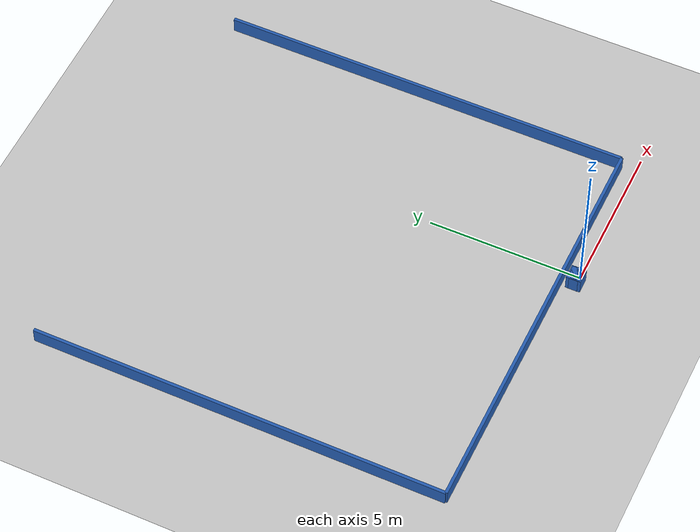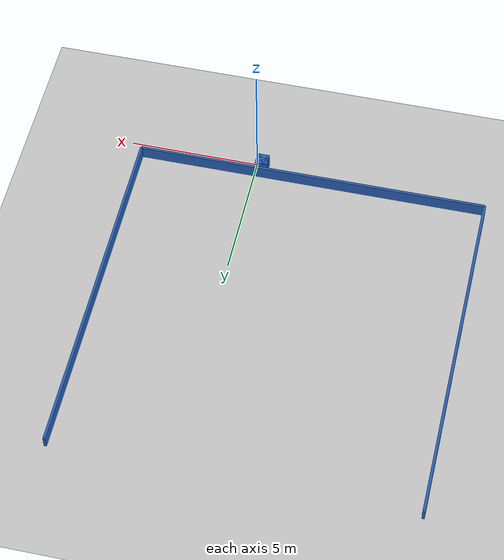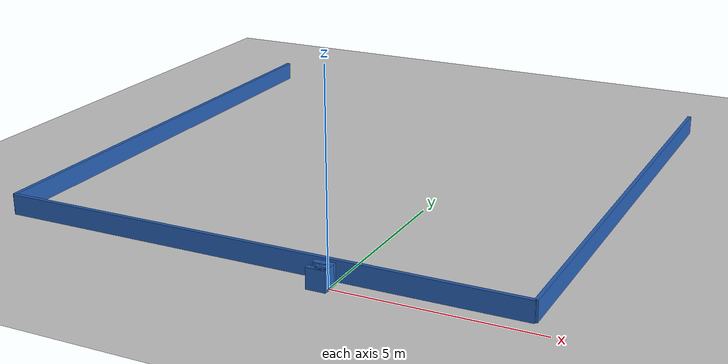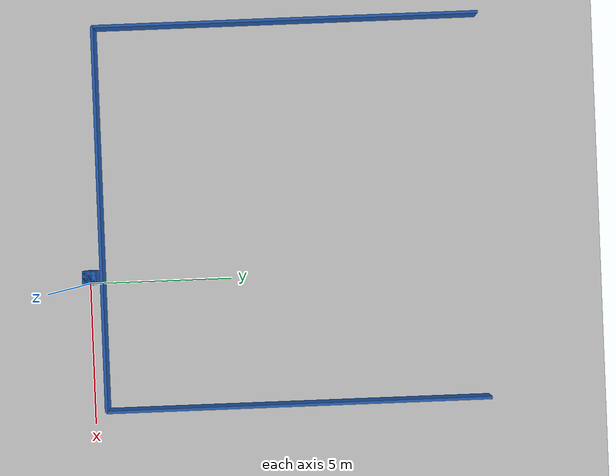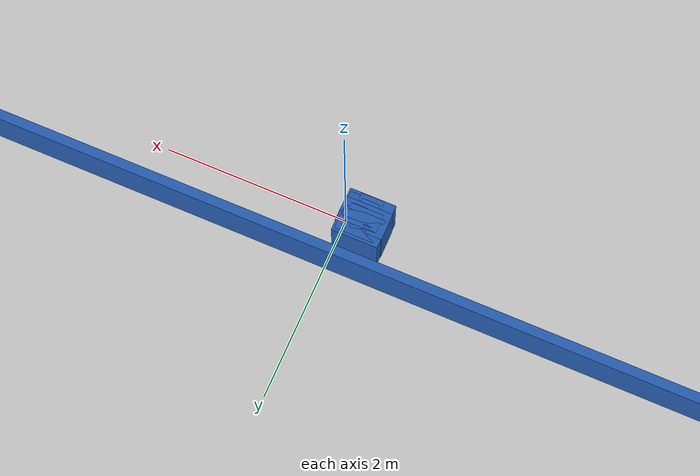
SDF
<?xml version="1.0" ?>
    <sdf version="1.5">
      <world name="default">
        <!-- A global light source -->
        <include>
          <uri>model://sun</uri>
        </include>
        <!-- A ground plane -->
        <include>
          <uri>model://ground_plane</uri>
        </include>

    <model name='libopen_space_final_T2B_121_6'>
      <static>1</static>
      <pose frame=''>-0.225000 0.075000 0.000000 0.000000 0.000000 0.000000</pose>
      <link name='link'>
        <inertial>
          <mass>1</mass>
          <inertia>
            <ixx>0.145833</ixx>
            <ixy>0</ixy>
            <ixz>0</ixz>
            <iyy>0.145833</iyy>
            <iyz>0</iyz>
            <izz>0.125</izz>
          </inertia>
        </inertial>
        <collision name='collision'>
          <geometry>
            <box>
              <size>0.49 0.48 1</size>
            </box>
          </geometry>
          <max_contacts>10</max_contacts>
          <surface>
            <contact>
              <ode/>
            </contact>
            <bounce/>
            <friction>
              <torsional>
                <ode/>
              </torsional>
              <ode/>
            </friction>
          </surface>
        </collision>
        <visual name='visual'>
          <geometry>
            <box>
              <size>0.49 0.48 1</size>
            </box>
          </geometry>
	    <material>
              <ambient>0.152000 0.379000 0.720000 1</ambient>
	      <diffuse>0.152000 0.379000 0.720000 1</diffuse>
          </material>
          <material>
            <script>
              <name>Gazebo/Grey</name>
              <uri>file://media/materials/scripts/gazebo.material</uri>
            </script>
          </material>
        </visual>
        <self_collide>0</self_collide>
        <kinematic>0</kinematic>
        <gravity>1</gravity>
      </link>
      <plugin name='libopen_space_final_T2B_121_6' filename='libopen_space_final_T2B_121_6.so'/>
    </model>

    <model name='libopen_space_final_T2B_84_5'>
      <static>1</static>
      <pose frame=''>-0.225000 0.075000 0.000000 0.000000 0.000000 0.000000</pose>
      <link name='link'>
        <inertial>
          <mass>1</mass>
          <inertia>
            <ixx>0.145833</ixx>
            <ixy>0</ixy>
            <ixz>0</ixz>
            <iyy>0.145833</iyy>
            <iyz>0</iyz>
            <izz>0.125</izz>
          </inertia>
        </inertial>
        <collision name='collision'>
          <geometry>
            <box>
              <size>0.31 0.14 1</size>
            </box>
          </geometry>
          <max_contacts>10</max_contacts>
          <surface>
            <contact>
              <ode/>
            </contact>
            <bounce/>
            <friction>
              <torsional>
                <ode/>
              </torsional>
              <ode/>
            </friction>
          </surface>
        </collision>
        <visual name='visual'>
          <geometry>
            <box>
              <size>0.31 0.14 1</size>
            </box>
          </geometry>
	    <material>
              <ambient>0.152000 0.379000 0.720000 1</ambient>
	      <diffuse>0.152000 0.379000 0.720000 1</diffuse>
          </material>
          <material>
            <script>
              <name>Gazebo/Grey</name>
              <uri>file://media/materials/scripts/gazebo.material</uri>
            </script>
          </material>
        </visual>
        <self_collide>0</self_collide>
        <kinematic>0</kinematic>
        <gravity>1</gravity>
      </link>
      <plugin name='libopen_space_final_T2B_84_5' filename='libopen_space_final_T2B_84_5.so'/>
    </model>

    <model name='libopen_space_final_T2B_134_32'>
      <static>1</static>
      <pose frame=''>-0.225000 0.075000 0.000000 0.000000 0.000000 0.000000</pose>
      <link name='link'>
        <inertial>
          <mass>1</mass>
          <inertia>
            <ixx>0.145833</ixx>
            <ixy>0</ixy>
            <ixz>0</ixz>
            <iyy>0.145833</iyy>
            <iyz>0</iyz>
            <izz>0.125</izz>
          </inertia>
        </inertial>
        <collision name='collision'>
          <geometry>
            <box>
              <size>0.32 0.21 1</size>
            </box>
          </geometry>
          <max_contacts>10</max_contacts>
          <surface>
            <contact>
              <ode/>
            </contact>
            <bounce/>
            <friction>
              <torsional>
                <ode/>
              </torsional>
              <ode/>
            </friction>
          </surface>
        </collision>
        <visual name='visual'>
          <geometry>
            <box>
              <size>0.32 0.21 1</size>
            </box>
          </geometry>
	    <material>
              <ambient>0.152000 0.379000 0.720000 1</ambient>
	      <diffuse>0.152000 0.379000 0.720000 1</diffuse>
          </material>
          <material>
            <script>
              <name>Gazebo/Grey</name>
              <uri>file://media/materials/scripts/gazebo.material</uri>
            </script>
          </material>
        </visual>
        <self_collide>0</self_collide>
        <kinematic>0</kinematic>
        <gravity>1</gravity>
      </link>
      <plugin name='libopen_space_final_T2B_134_32' filename='libopen_space_final_T2B_134_32.so'/>
    </model>

    <model name='libopen_space_final_T2B_77_65'>
      <static>1</static>
      <pose frame=''>-0.225000 0.075000 0.000000 0.000000 0.000000 0.000000</pose>
      <link name='link'>
        <inertial>
          <mass>1</mass>
          <inertia>
            <ixx>0.145833</ixx>
            <ixy>0</ixy>
            <ixz>0</ixz>
            <iyy>0.145833</iyy>
            <iyz>0</iyz>
            <izz>0.125</izz>
          </inertia>
        </inertial>
        <collision name='collision'>
          <geometry>
            <box>
              <size>0.50 0.29 1</size>
            </box>
          </geometry>
          <max_contacts>10</max_contacts>
          <surface>
            <contact>
              <ode/>
            </contact>
            <bounce/>
            <friction>
              <torsional>
                <ode/>
              </torsional>
              <ode/>
            </friction>
          </surface>
        </collision>
        <visual name='visual'>
          <geometry>
            <box>
              <size>0.50 0.29 1</size>
            </box>
          </geometry>
	    <material>
              <ambient>0.152000 0.379000 0.720000 1</ambient>
	      <diffuse>0.152000 0.379000 0.720000 1</diffuse>
          </material>
          <material>
            <script>
              <name>Gazebo/Grey</name>
              <uri>file://media/materials/scripts/gazebo.material</uri>
            </script>
          </material>
        </visual>
        <self_collide>0</self_collide>
        <kinematic>0</kinematic>
        <gravity>1</gravity>
      </link>
      <plugin name='libopen_space_final_T2B_77_65' filename='libopen_space_final_T2B_77_65.so'/>
    </model>

    <model name='libopen_space_final_T2B_145_37'>
      <static>1</static>
      <pose frame=''>-0.225000 0.075000 0.000000 0.000000 0.000000 0.000000</pose>
      <link name='link'>
        <inertial>
          <mass>1</mass>
          <inertia>
            <ixx>0.145833</ixx>
            <ixy>0</ixy>
            <ixz>0</ixz>
            <iyy>0.145833</iyy>
            <iyz>0</iyz>
            <izz>0.125</izz>
          </inertia>
        </inertial>
        <collision name='collision'>
          <geometry>
            <box>
              <size>0.20 0.23 1</size>
            </box>
          </geometry>
          <max_contacts>10</max_contacts>
          <surface>
            <contact>
              <ode/>
            </contact>
            <bounce/>
            <friction>
              <torsional>
                <ode/>
              </torsional>
              <ode/>
            </friction>
          </surface>
        </collision>
        <visual name='visual'>
          <geometry>
            <box>
              <size>0.20 0.23 1</size>
            </box>
          </geometry>
	    <material>
              <ambient>0.152000 0.379000 0.720000 1</ambient>
	      <diffuse>0.152000 0.379000 0.720000 1</diffuse>
          </material>
          <material>
            <script>
              <name>Gazebo/Grey</name>
              <uri>file://media/materials/scripts/gazebo.material</uri>
            </script>
          </material>
        </visual>
        <self_collide>0</self_collide>
        <kinematic>0</kinematic>
        <gravity>1</gravity>
      </link>
      <plugin name='libopen_space_final_T2B_145_37' filename='libopen_space_final_T2B_145_37.so'/>
    </model>

    <model name='libopen_space_final_T2B_87_56'>
      <static>1</static>
      <pose frame=''>-0.225000 0.075000 0.000000 0.000000 0.000000 0.000000</pose>
      <link name='link'>
        <inertial>
          <mass>1</mass>
          <inertia>
            <ixx>0.145833</ixx>
            <ixy>0</ixy>
            <ixz>0</ixz>
            <iyy>0.145833</iyy>
            <iyz>0</iyz>
            <izz>0.125</izz>
          </inertia>
        </inertial>
        <collision name='collision'>
          <geometry>
            <box>
              <size>0.19 0.37 1</size>
            </box>
          </geometry>
          <max_contacts>10</max_contacts>
          <surface>
            <contact>
              <ode/>
            </contact>
            <bounce/>
            <friction>
              <torsional>
                <ode/>
              </torsional>
              <ode/>
            </friction>
          </surface>
        </collision>
        <visual name='visual'>
          <geometry>
            <box>
              <size>0.19 0.37 1</size>
            </box>
          </geometry>
	    <material>
              <ambient>0.152000 0.379000 0.720000 1</ambient>
	      <diffuse>0.152000 0.379000 0.720000 1</diffuse>
          </material>
          <material>
            <script>
              <name>Gazebo/Grey</name>
              <uri>file://media/materials/scripts/gazebo.material</uri>
            </script>
          </material>
        </visual>
        <self_collide>0</self_collide>
        <kinematic>0</kinematic>
        <gravity>1</gravity>
      </link>
      <plugin name='libopen_space_final_T2B_87_56' filename='libopen_space_final_T2B_87_56.so'/>
    </model>

    <model name='libopen_space_final_T2B_139_84'>
      <static>1</static>
      <pose frame=''>-0.225000 0.075000 0.000000 0.000000 0.000000 0.000000</pose>
      <link name='link'>
        <inertial>
          <mass>1</mass>
          <inertia>
            <ixx>0.145833</ixx>
            <ixy>0</ixy>
            <ixz>0</ixz>
            <iyy>0.145833</iyy>
            <iyz>0</iyz>
            <izz>0.125</izz>
          </inertia>
        </inertial>
        <collision name='collision'>
          <geometry>
            <box>
              <size>0.45 0.42 1</size>
            </box>
          </geometry>
          <max_contacts>10</max_contacts>
          <surface>
            <contact>
              <ode/>
            </contact>
            <bounce/>
            <friction>
              <torsional>
                <ode/>
              </torsional>
              <ode/>
            </friction>
          </surface>
        </collision>
        <visual name='visual'>
          <geometry>
            <box>
              <size>0.45 0.42 1</size>
            </box>
          </geometry>
	    <material>
              <ambient>0.152000 0.379000 0.720000 1</ambient>
	      <diffuse>0.152000 0.379000 0.720000 1</diffuse>
          </material>
          <material>
            <script>
              <name>Gazebo/Grey</name>
              <uri>file://media/materials/scripts/gazebo.material</uri>
            </script>
          </material>
        </visual>
        <self_collide>0</self_collide>
        <kinematic>0</kinematic>
        <gravity>1</gravity>
      </link>
      <plugin name='libopen_space_final_T2B_139_84' filename='libopen_space_final_T2B_139_84.so'/>
    </model>

    <model name='libopen_space_final_T2B_55_44'>
      <static>1</static>
      <pose frame=''>-0.225000 0.075000 0.000000 0.000000 0.000000 0.000000</pose>
      <link name='link'>
        <inertial>
          <mass>1</mass>
          <inertia>
            <ixx>0.145833</ixx>
            <ixy>0</ixy>
            <ixz>0</ixz>
            <iyy>0.145833</iyy>
            <iyz>0</iyz>
            <izz>0.125</izz>
          </inertia>
        </inertial>
        <collision name='collision'>
          <geometry>
            <box>
              <size>0.45 0.21 1</size>
            </box>
          </geometry>
          <max_contacts>10</max_contacts>
          <surface>
            <contact>
              <ode/>
            </contact>
            <bounce/>
            <friction>
              <torsional>
                <ode/>
              </torsional>
              <ode/>
            </friction>
          </surface>
        </collision>
        <visual name='visual'>
          <geometry>
            <box>
              <size>0.45 0.21 1</size>
            </box>
          </geometry>
	    <material>
              <ambient>0.152000 0.379000 0.720000 1</ambient>
	      <diffuse>0.152000 0.379000 0.720000 1</diffuse>
          </material>
          <material>
            <script>
              <name>Gazebo/Grey</name>
              <uri>file://media/materials/scripts/gazebo.material</uri>
            </script>
          </material>
        </visual>
        <self_collide>0</self_collide>
        <kinematic>0</kinematic>
        <gravity>1</gravity>
      </link>
      <plugin name='libopen_space_final_T2B_55_44' filename='libopen_space_final_T2B_55_44.so'/>
    </model>

    <model name='libopen_space_final_T2B_118_43'>
      <static>1</static>
      <pose frame=''>-0.225000 0.075000 0.000000 0.000000 0.000000 0.000000</pose>
      <link name='link'>
        <inertial>
          <mass>1</mass>
          <inertia>
            <ixx>0.145833</ixx>
            <ixy>0</ixy>
            <ixz>0</ixz>
            <iyy>0.145833</iyy>
            <iyz>0</iyz>
            <izz>0.125</izz>
          </inertia>
        </inertial>
        <collision name='collision'>
          <geometry>
            <box>
              <size>0.43 0.11 1</size>
            </box>
          </geometry>
          <max_contacts>10</max_contacts>
          <surface>
            <contact>
              <ode/>
            </contact>
            <bounce/>
            <friction>
              <torsional>
                <ode/>
              </torsional>
              <ode/>
            </friction>
          </surface>
        </collision>
        <visual name='visual'>
          <geometry>
            <box>
              <size>0.43 0.11 1</size>
            </box>
          </geometry>
	    <material>
              <ambient>0.152000 0.379000 0.720000 1</ambient>
	      <diffuse>0.152000 0.379000 0.720000 1</diffuse>
          </material>
          <material>
            <script>
              <name>Gazebo/Grey</name>
              <uri>file://media/materials/scripts/gazebo.material</uri>
            </script>
          </material>
        </visual>
        <self_collide>0</self_collide>
        <kinematic>0</kinematic>
        <gravity>1</gravity>
      </link>
      <plugin name='libopen_space_final_T2B_118_43' filename='libopen_space_final_T2B_118_43.so'/>
    </model>

    <model name='libopen_space_final_T2B_83_61'>
      <static>1</static>
      <pose frame=''>-0.225000 0.075000 0.000000 0.000000 0.000000 0.000000</pose>
      <link name='link'>
        <inertial>
          <mass>1</mass>
          <inertia>
            <ixx>0.145833</ixx>
            <ixy>0</ixy>
            <ixz>0</ixz>
            <iyy>0.145833</iyy>
            <iyz>0</iyz>
            <izz>0.125</izz>
          </inertia>
        </inertial>
        <collision name='collision'>
          <geometry>
            <box>
              <size>0.35 0.20 1</size>
            </box>
          </geometry>
          <max_contacts>10</max_contacts>
          <surface>
            <contact>
              <ode/>
            </contact>
            <bounce/>
            <friction>
              <torsional>
                <ode/>
              </torsional>
              <ode/>
            </friction>
          </surface>
        </collision>
        <visual name='visual'>
          <geometry>
            <box>
              <size>0.35 0.20 1</size>
            </box>
          </geometry>
	    <material>
              <ambient>0.152000 0.379000 0.720000 1</ambient>
	      <diffuse>0.152000 0.379000 0.720000 1</diffuse>
          </material>
          <material>
            <script>
              <name>Gazebo/Grey</name>
              <uri>file://media/materials/scripts/gazebo.material</uri>
            </script>
          </material>
        </visual>
        <self_collide>0</self_collide>
        <kinematic>0</kinematic>
        <gravity>1</gravity>
      </link>
      <plugin name='libopen_space_final_T2B_83_61' filename='libopen_space_final_T2B_83_61.so'/>
    </model>

    <model name='libopen_space_final_T2B_64_52'>
      <static>1</static>
      <pose frame=''>-0.225000 0.075000 0.000000 0.000000 0.000000 0.000000</pose>
      <link name='link'>
        <inertial>
          <mass>1</mass>
          <inertia>
            <ixx>0.145833</ixx>
            <ixy>0</ixy>
            <ixz>0</ixz>
            <iyy>0.145833</iyy>
            <iyz>0</iyz>
            <izz>0.125</izz>
          </inertia>
        </inertial>
        <collision name='collision'>
          <geometry>
            <box>
              <size>0.25 0.47 1</size>
            </box>
          </geometry>
          <max_contacts>10</max_contacts>
          <surface>
            <contact>
              <ode/>
            </contact>
            <bounce/>
            <friction>
              <torsional>
                <ode/>
              </torsional>
              <ode/>
            </friction>
          </surface>
        </collision>
        <visual name='visual'>
          <geometry>
            <box>
              <size>0.25 0.47 1</size>
            </box>
          </geometry>
	    <material>
              <ambient>0.152000 0.379000 0.720000 1</ambient>
	      <diffuse>0.152000 0.379000 0.720000 1</diffuse>
          </material>
          <material>
            <script>
              <name>Gazebo/Grey</name>
              <uri>file://media/materials/scripts/gazebo.material</uri>
            </script>
          </material>
        </visual>
        <self_collide>0</self_collide>
        <kinematic>0</kinematic>
        <gravity>1</gravity>
      </link>
      <plugin name='libopen_space_final_T2B_64_52' filename='libopen_space_final_T2B_64_52.so'/>
    </model>

        <model name='bottom_wall'>
          <static>1</static>
          <pose frame=''>-2.25 0.5 0.000000 0.000000 0.000000 1.57079632</pose>
          <link name='link'>
            <inertial>
            <mass>1</mass>
            <inertia>
              <ixx>0.145833</ixx>
              <ixy>0</ixy>
              <ixz>0</ixz>
              <iyy>0.145833</iyy>
              <iyz>0</iyz>
              <izz>0.125</izz>
            </inertia>
            </inertial>
            <collision name='collision'>
            <geometry>
              <box>
              <size>0.1 13.5 1</size>
              </box>
            </geometry>
            <max_contacts>10</max_contacts>
            <surface>
              <contact>
              <ode/>
              </contact>
              <bounce/>
              <friction>
              <torsional>
                <ode/>
              </torsional>
              <ode/>
              </friction>
            </surface>
            </collision>
            <visual name='visual'>
            <geometry>
              <box>
              <size>0.1 13.5 1</size>
              </box>
            </geometry>
            <material>
              <ambient>0.152000 0.379000 0.720000 1</ambient>
            <diffuse>0.152000 0.379000 0.720000 1</diffuse>
            </material>
            <material>
              <script>
              <name>Gazebo/Grey</name>
              <uri>file://media/materials/scripts/gazebo.material</uri>
              </script>
            </material>
            </visual>
            <self_collide>0</self_collide>
            <kinematic>0</kinematic>
            <gravity>1</gravity>
          </link>
        </model>

        <model name='left_wall'>
          <static>1</static>
          <pose frame=''>-9 7.25 0.000000 0.000000 0.000000 0.000000</pose>
          <link name='link'>
            <inertial>
            <mass>1</mass>
            <inertia>
              <ixx>0.145833</ixx>
              <ixy>0</ixy>
              <ixz>0</ixz>
              <iyy>0.145833</iyy>
              <iyz>0</iyz>
              <izz>0.125</izz>
            </inertia>
            </inertial>
            <collision name='collision'>
            <geometry>
              <box>
              <size>0.1 13.5 1</size>
              </box>
            </geometry>
            <max_contacts>10</max_contacts>
            <surface>
              <contact>
              <ode/>
              </contact>
              <bounce/>
              <friction>
              <torsional>
                <ode/>
              </torsional>
              <ode/>
              </friction>
            </surface>
            </collision>
            <visual name='visual'>
            <geometry>
              <box>
              <size>0.1 13.5 1</size>
              </box>
            </geometry>
            <material>
              <ambient>0.152000 0.379000 0.720000 1</ambient>
            <diffuse>0.152000 0.379000 0.720000 1</diffuse>
            </material>
            <material>
              <script>
              <name>Gazebo/Grey</name>
              <uri>file://media/materials/scripts/gazebo.material</uri>
              </script>
            </material>
            </visual>
            <self_collide>0</self_collide>
            <kinematic>0</kinematic>
            <gravity>1</gravity>
          </link>
        </model>

        <model name='right_wall'>
          <static>1</static>
          <pose frame=''>4.5 7.25 0.000000 0.000000 0.000000 0.000000</pose>
          <link name='link'>
            <inertial>
            <mass>1</mass>
            <inertia>
              <ixx>0.145833</ixx>
              <ixy>0</ixy>
              <ixz>0</ixz>
              <iyy>0.145833</iyy>
              <iyz>0</iyz>
              <izz>0.125</izz>
            </inertia>
            </inertial>
            <collision name='collision'>
            <geometry>
              <box>
              <size>0.1 13.5 1</size>
              </box>
            </geometry>
            <max_contacts>10</max_contacts>
            <surface>
              <contact>
              <ode/>
              </contact>
              <bounce/>
              <friction>
              <torsional>
                <ode/>
              </torsional>
              <ode/>
              </friction>
            </surface>
            </collision>
            <visual name='visual'>
            <geometry>
              <box>
              <size>0.1 13.5 1</size>
              </box>
            </geometry>
            <material>
              <ambient>0.152000 0.379000 0.720000 1</ambient>
            <diffuse>0.152000 0.379000 0.720000 1</diffuse>
            </material>
            <material>
              <script>
              <name>Gazebo/Grey</name>
              <uri>file://media/materials/scripts/gazebo.material</uri>
              </script>
            </material>
            </visual>
            <self_collide>0</self_collide>
            <kinematic>0</kinematic>
            <gravity>1</gravity>
          </link>
        </model>

      </world>
    </sdf>"
